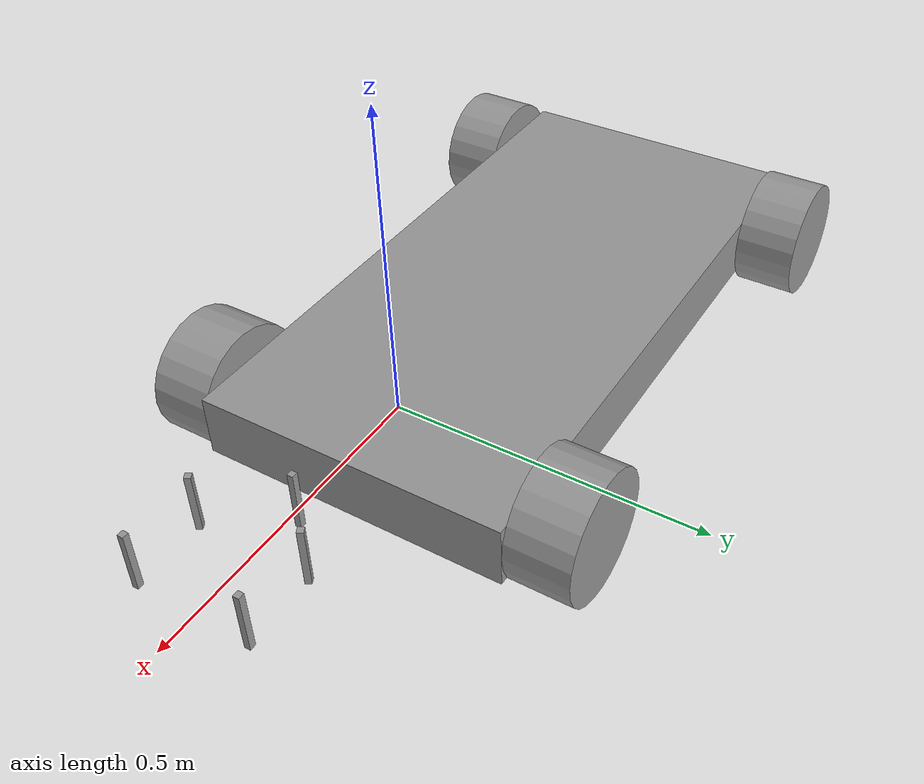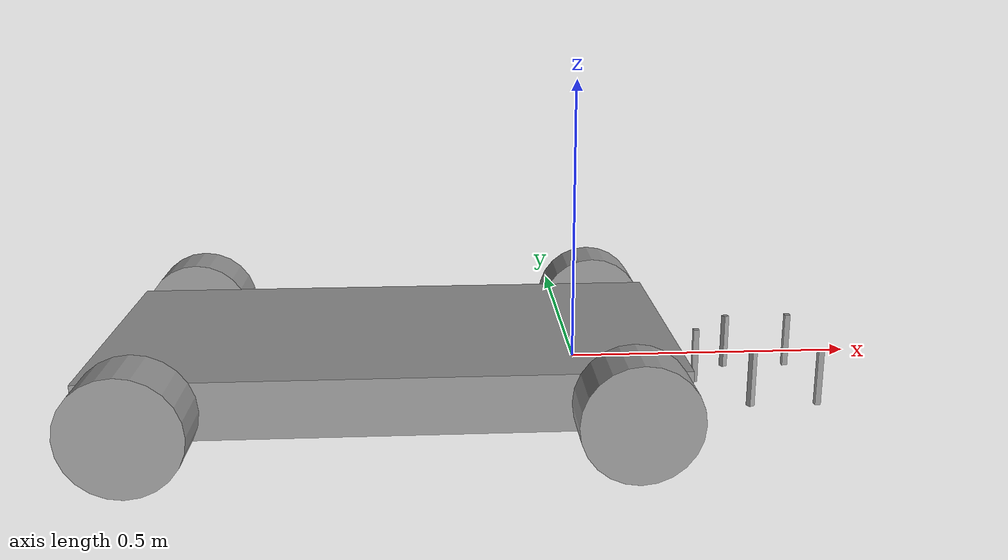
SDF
<?xml version='1.0'?>
<sdf version='1.6'>
  <model name='4wheelWithGripper'>
    <model name='4_wheel_with_gripper'>
      <link name='link_0'>
        <pose frame=''>-0.32743 0.03164 0 0 -0 0</pose>
        <inertial>
          <mass>1</mass>
          <inertia>
            <ixx>0.166667</ixx>
            <ixy>0</ixy>
            <ixz>0</ixz>
            <iyy>0.166667</iyy>
            <iyz>0</iyz>
            <izz>0.166667</izz>
          </inertia>
          <pose frame=''>0 0 0 0 -0 0</pose>
        </inertial>
        <gravity>1</gravity>
        <self_collide>0</self_collide>
        <kinematic>0</kinematic>
        <visual name='visual'>
          <pose frame=''>0 0 0 0 -0 0</pose>
          <geometry>
            <box>
              <size>1 0.5 0.1</size>
            </box>
          </geometry>
          <material>
            <lighting>1</lighting>
            <script>
              <uri>file://media/materials/scripts/gazebo.material</uri>
              <name>Gazebo/Grey</name>
            </script>
            <shader type='pixel'>
              <normal_map>__default__</normal_map>
            </shader>
            <ambient>0.3 0.3 0.3 1</ambient>
            <diffuse>0.7 0.7 0.7 1</diffuse>
            <specular>0.01 0.01 0.01 1</specular>
            <emissive>0 0 0 1</emissive>
          </material>
          <transparency>0</transparency>
          <cast_shadows>1</cast_shadows>
        </visual>
        <collision name='collision'>
          <laser_retro>0</laser_retro>
          <max_contacts>10</max_contacts>
          <pose frame=''>0 0 0 0 -0 0</pose>
          <geometry>
            <box>
              <size>1 0.5 0.1</size>
            </box>
          </geometry>
          <surface>
            <friction>
              <ode>
                <mu>1</mu>
                <mu2>1</mu2>
                <fdir1>0 0 0</fdir1>
                <slip1>0</slip1>
                <slip2>0</slip2>
              </ode>
              <torsional>
                <coefficient>1</coefficient>
                <patch_radius>0</patch_radius>
                <surface_radius>0</surface_radius>
                <use_patch_radius>1</use_patch_radius>
                <ode>
                  <slip>0</slip>
                </ode>
              </torsional>
            </friction>
            <bounce>
              <restitution_coefficient>0</restitution_coefficient>
              <threshold>1e+06</threshold>
            </bounce>
            <contact>
              <collide_without_contact>0</collide_without_contact>
              <collide_without_contact_bitmask>1</collide_without_contact_bitmask>
              <collide_bitmask>1</collide_bitmask>
              <ode>
                <soft_cfm>0</soft_cfm>
                <soft_erp>0.2</soft_erp>
                <kp>1e+13</kp>
                <kd>1</kd>
                <max_vel>0.01</max_vel>
                <min_depth>0</min_depth>
              </ode>
              <bullet>
                <split_impulse>1</split_impulse>
                <split_impulse_penetration_threshold>-0.01</split_impulse_penetration_threshold>
                <soft_cfm>0</soft_cfm>
                <soft_erp>0.2</soft_erp>
                <kp>1e+13</kp>
                <kd>1</kd>
              </bullet>
            </contact>
          </surface>
        </collision>
      </link>
      <link name='link_2'>
        <pose frame=''>-0.72743 -0.268373 0 1.5707 -0 0</pose>
        <inertial>
          <mass>1</mass>
          <inertia>
            <ixx>0.145833</ixx>
            <ixy>0</ixy>
            <ixz>0</ixz>
            <iyy>0.145833</iyy>
            <iyz>0</iyz>
            <izz>0.125</izz>
          </inertia>
          <pose frame=''>0 0 0 0 -0 0</pose>
        </inertial>
        <gravity>1</gravity>
        <self_collide>0</self_collide>
        <kinematic>0</kinematic>
        <visual name='visual'>
          <pose frame=''>0 0 0 0 -0 0</pose>
          <geometry>
            <cylinder>
              <radius>0.1</radius>
              <length>0.1</length>
            </cylinder>
          </geometry>
          <material>
            <lighting>1</lighting>
            <script>
              <uri>file://media/materials/scripts/gazebo.material</uri>
              <name>Gazebo/Grey</name>
            </script>
            <shader type='pixel'>
              <normal_map>__default__</normal_map>
            </shader>
            <ambient>0.3 0.3 0.3 1</ambient>
            <diffuse>0.7 0.7 0.7 1</diffuse>
            <specular>0.01 0.01 0.01 1</specular>
            <emissive>0 0 0 1</emissive>
          </material>
          <transparency>0</transparency>
          <cast_shadows>1</cast_shadows>
        </visual>
        <collision name='collision'>
          <laser_retro>0</laser_retro>
          <max_contacts>10</max_contacts>
          <pose frame=''>0 0 0 0 -0 0</pose>
          <geometry>
            <cylinder>
              <radius>0.1</radius>
              <length>0.1</length>
            </cylinder>
          </geometry>
          <surface>
            <friction>
              <ode>
                <mu>1</mu>
                <mu2>1</mu2>
                <fdir1>0 0 0</fdir1>
                <slip1>0</slip1>
                <slip2>0</slip2>
              </ode>
              <torsional>
                <coefficient>1</coefficient>
                <patch_radius>0</patch_radius>
                <surface_radius>0</surface_radius>
                <use_patch_radius>1</use_patch_radius>
                <ode>
                  <slip>0</slip>
                </ode>
              </torsional>
            </friction>
            <bounce>
              <restitution_coefficient>0</restitution_coefficient>
              <threshold>1e+06</threshold>
            </bounce>
            <contact>
              <collide_without_contact>0</collide_without_contact>
              <collide_without_contact_bitmask>1</collide_without_contact_bitmask>
              <collide_bitmask>1</collide_bitmask>
              <ode>
                <soft_cfm>0</soft_cfm>
                <soft_erp>0.2</soft_erp>
                <kp>1e+13</kp>
                <kd>1</kd>
                <max_vel>0.01</max_vel>
                <min_depth>0</min_depth>
              </ode>
              <bullet>
                <split_impulse>1</split_impulse>
                <split_impulse_penetration_threshold>-0.01</split_impulse_penetration_threshold>
                <soft_cfm>0</soft_cfm>
                <soft_erp>0.2</soft_erp>
                <kp>1e+13</kp>
                <kd>1</kd>
              </bullet>
            </contact>
          </surface>
        </collision>
      </link>
      <link name='link_2_clone'>
        <pose frame=''>0.07257 0.33165 0 1.5707 -0 0</pose>
        <inertial>
          <mass>1</mass>
          <inertia>
            <ixx>0.145833</ixx>
            <ixy>0</ixy>
            <ixz>0</ixz>
            <iyy>0.145833</iyy>
            <iyz>0</iyz>
            <izz>0.125</izz>
          </inertia>
          <pose frame=''>0 0 0 0 -0 0</pose>
        </inertial>
        <self_collide>0</self_collide>
        <kinematic>0</kinematic>
        <visual name='visual'>
          <pose frame=''>0 0 0 0 -0 0</pose>
          <geometry>
            <cylinder>
              <radius>0.1</radius>
              <length>0.1</length>
            </cylinder>
          </geometry>
          <material>
            <lighting>1</lighting>
            <script>
              <uri>file://media/materials/scripts/gazebo.material</uri>
              <name>Gazebo/Grey</name>
            </script>
            <shader type='pixel'>
              <normal_map>__default__</normal_map>
            </shader>
            <ambient>0.3 0.3 0.3 1</ambient>
            <diffuse>0.7 0.7 0.7 1</diffuse>
            <specular>0.01 0.01 0.01 1</specular>
            <emissive>0 0 0 1</emissive>
          </material>
          <transparency>0</transparency>
          <cast_shadows>1</cast_shadows>
        </visual>
        <collision name='collision'>
          <laser_retro>0</laser_retro>
          <max_contacts>10</max_contacts>
          <pose frame=''>0 0 0 0 -0 0</pose>
          <geometry>
            <cylinder>
              <radius>0.1</radius>
              <length>0.1</length>
            </cylinder>
          </geometry>
          <surface>
            <friction>
              <ode>
                <mu>1</mu>
                <mu2>1</mu2>
                <fdir1>0 0 0</fdir1>
                <slip1>0</slip1>
                <slip2>0</slip2>
              </ode>
              <torsional>
                <coefficient>1</coefficient>
                <patch_radius>0</patch_radius>
                <surface_radius>0</surface_radius>
                <use_patch_radius>1</use_patch_radius>
                <ode>
                  <slip>0</slip>
                </ode>
              </torsional>
            </friction>
            <bounce>
              <restitution_coefficient>0</restitution_coefficient>
              <threshold>1e+06</threshold>
            </bounce>
            <contact>
              <collide_without_contact>0</collide_without_contact>
              <collide_without_contact_bitmask>1</collide_without_contact_bitmask>
              <collide_bitmask>1</collide_bitmask>
              <ode>
                <soft_cfm>0</soft_cfm>
                <soft_erp>0.2</soft_erp>
                <kp>1e+13</kp>
                <kd>1</kd>
                <max_vel>0.01</max_vel>
                <min_depth>0</min_depth>
              </ode>
              <bullet>
                <split_impulse>1</split_impulse>
                <split_impulse_penetration_threshold>-0.01</split_impulse_penetration_threshold>
                <soft_cfm>0</soft_cfm>
                <soft_erp>0.2</soft_erp>
                <kp>1e+13</kp>
                <kd>1</kd>
              </bullet>
            </contact>
          </surface>
        </collision>
      </link>
      <link name='link_2_clone_0'>
        <pose frame=''>-0.72743 0.33165 0 1.5707 -0 0</pose>
        <inertial>
          <mass>1</mass>
          <inertia>
            <ixx>0.145833</ixx>
            <ixy>0</ixy>
            <ixz>0</ixz>
            <iyy>0.145833</iyy>
            <iyz>0</iyz>
            <izz>0.125</izz>
          </inertia>
          <pose frame=''>0 0 0 0 -0 0</pose>
        </inertial>
        <self_collide>0</self_collide>
        <kinematic>0</kinematic>
        <visual name='visual'>
          <pose frame=''>0 0 0 0 -0 0</pose>
          <geometry>
            <cylinder>
              <radius>0.1</radius>
              <length>0.1</length>
            </cylinder>
          </geometry>
          <material>
            <lighting>1</lighting>
            <script>
              <uri>file://media/materials/scripts/gazebo.material</uri>
              <name>Gazebo/Grey</name>
            </script>
            <shader type='pixel'>
              <normal_map>__default__</normal_map>
            </shader>
            <ambient>0.3 0.3 0.3 1</ambient>
            <diffuse>0.7 0.7 0.7 1</diffuse>
            <specular>0.01 0.01 0.01 1</specular>
            <emissive>0 0 0 1</emissive>
          </material>
          <transparency>0</transparency>
          <cast_shadows>1</cast_shadows>
        </visual>
        <collision name='collision'>
          <laser_retro>0</laser_retro>
          <max_contacts>10</max_contacts>
          <pose frame=''>0 0 0 0 -0 0</pose>
          <geometry>
            <cylinder>
              <radius>0.1</radius>
              <length>0.1</length>
            </cylinder>
          </geometry>
          <surface>
            <friction>
              <ode>
                <mu>1</mu>
                <mu2>1</mu2>
                <fdir1>0 0 0</fdir1>
                <slip1>0</slip1>
                <slip2>0</slip2>
              </ode>
              <torsional>
                <coefficient>1</coefficient>
                <patch_radius>0</patch_radius>
                <surface_radius>0</surface_radius>
                <use_patch_radius>1</use_patch_radius>
                <ode>
                  <slip>0</slip>
                </ode>
              </torsional>
            </friction>
            <bounce>
              <restitution_coefficient>0</restitution_coefficient>
              <threshold>1e+06</threshold>
            </bounce>
            <contact>
              <collide_without_contact>0</collide_without_contact>
              <collide_without_contact_bitmask>1</collide_without_contact_bitmask>
              <collide_bitmask>1</collide_bitmask>
              <ode>
                <soft_cfm>0</soft_cfm>
                <soft_erp>0.2</soft_erp>
                <kp>1e+13</kp>
                <kd>1</kd>
                <max_vel>0.01</max_vel>
                <min_depth>0</min_depth>
              </ode>
              <bullet>
                <split_impulse>1</split_impulse>
                <split_impulse_penetration_threshold>-0.01</split_impulse_penetration_threshold>
                <soft_cfm>0</soft_cfm>
                <soft_erp>0.2</soft_erp>
                <kp>1e+13</kp>
                <kd>1</kd>
              </bullet>
            </contact>
          </surface>
        </collision>
      </link>
      <link name='link_2_clone_1'>
        <pose frame=''>0.07257 -0.268369 0 1.5707 -0 0</pose>
        <inertial>
          <mass>1</mass>
          <inertia>
            <ixx>0.145833</ixx>
            <ixy>0</ixy>
            <ixz>0</ixz>
            <iyy>0.145833</iyy>
            <iyz>0</iyz>
            <izz>0.125</izz>
          </inertia>
          <pose frame=''>0 0 0 0 -0 0</pose>
        </inertial>
        <self_collide>0</self_collide>
        <kinematic>0</kinematic>
        <visual name='visual'>
          <pose frame=''>0 0 0 0 -0 0</pose>
          <geometry>
            <cylinder>
              <radius>0.1</radius>
              <length>0.1</length>
            </cylinder>
          </geometry>
          <material>
            <lighting>1</lighting>
            <script>
              <uri>file://media/materials/scripts/gazebo.material</uri>
              <name>Gazebo/Grey</name>
            </script>
            <shader type='pixel'>
              <normal_map>__default__</normal_map>
            </shader>
            <ambient>0.3 0.3 0.3 1</ambient>
            <diffuse>0.7 0.7 0.7 1</diffuse>
            <specular>0.01 0.01 0.01 1</specular>
            <emissive>0 0 0 1</emissive>
          </material>
          <transparency>0</transparency>
          <cast_shadows>1</cast_shadows>
        </visual>
        <collision name='collision'>
          <laser_retro>0</laser_retro>
          <max_contacts>10</max_contacts>
          <pose frame=''>0 0 0 0 -0 0</pose>
          <geometry>
            <cylinder>
              <radius>0.1</radius>
              <length>0.1</length>
            </cylinder>
          </geometry>
          <surface>
            <friction>
              <ode>
                <mu>1</mu>
                <mu2>1</mu2>
                <fdir1>0 0 0</fdir1>
                <slip1>0</slip1>
                <slip2>0</slip2>
              </ode>
              <torsional>
                <coefficient>1</coefficient>
                <patch_radius>0</patch_radius>
                <surface_radius>0</surface_radius>
                <use_patch_radius>1</use_patch_radius>
                <ode>
                  <slip>0</slip>
                </ode>
              </torsional>
            </friction>
            <bounce>
              <restitution_coefficient>0</restitution_coefficient>
              <threshold>1e+06</threshold>
            </bounce>
            <contact>
              <collide_without_contact>0</collide_without_contact>
              <collide_without_contact_bitmask>1</collide_without_contact_bitmask>
              <collide_bitmask>1</collide_bitmask>
              <ode>
                <soft_cfm>0</soft_cfm>
                <soft_erp>0.2</soft_erp>
                <kp>1e+13</kp>
                <kd>1</kd>
                <max_vel>0.01</max_vel>
                <min_depth>0</min_depth>
              </ode>
              <bullet>
                <split_impulse>1</split_impulse>
                <split_impulse_penetration_threshold>-0.01</split_impulse_penetration_threshold>
                <soft_cfm>0</soft_cfm>
                <soft_erp>0.2</soft_erp>
                <kp>1e+13</kp>
                <kd>1</kd>
              </bullet>
            </contact>
          </surface>
        </collision>
      </link>
      <link name='link_3'>
        <pose frame=''>0.22257 -0.01336 0 0 -0 0</pose>
        <inertial>
          <mass>1</mass>
          <inertia>
            <ixx>0.166667</ixx>
            <ixy>0</ixy>
            <ixz>0</ixz>
            <iyy>0.166667</iyy>
            <iyz>0</iyz>
            <izz>0.166667</izz>
          </inertia>
          <pose frame=''>0 0 0 0 -0 0</pose>
        </inertial>
        <gravity>1</gravity>
        <self_collide>0</self_collide>
        <kinematic>0</kinematic>
        <visual name='visual'>
          <pose frame=''>0 0 0 0 -0 0</pose>
          <geometry>
            <box>
              <size>0.01 0.01 0.1</size>
            </box>
          </geometry>
          <material>
            <lighting>1</lighting>
            <script>
              <uri>file://media/materials/scripts/gazebo.material</uri>
              <name>Gazebo/Grey</name>
            </script>
            <shader type='pixel'>
              <normal_map>__default__</normal_map>
            </shader>
            <ambient>0.3 0.3 0.3 1</ambient>
            <diffuse>0.7 0.7 0.7 1</diffuse>
            <specular>0.01 0.01 0.01 1</specular>
            <emissive>0 0 0 1</emissive>
          </material>
          <transparency>0</transparency>
          <cast_shadows>1</cast_shadows>
        </visual>
        <collision name='collision'>
          <laser_retro>0</laser_retro>
          <max_contacts>10</max_contacts>
          <pose frame=''>0 0 0 0 -0 0</pose>
          <geometry>
            <box>
              <size>0.1 0.1 0.1</size>
            </box>
          </geometry>
          <surface>
            <friction>
              <ode>
                <mu>1</mu>
                <mu2>1</mu2>
                <fdir1>0 0 0</fdir1>
                <slip1>0</slip1>
                <slip2>0</slip2>
              </ode>
              <torsional>
                <coefficient>1</coefficient>
                <patch_radius>0</patch_radius>
                <surface_radius>0</surface_radius>
                <use_patch_radius>1</use_patch_radius>
                <ode>
                  <slip>0</slip>
                </ode>
              </torsional>
            </friction>
            <bounce>
              <restitution_coefficient>0</restitution_coefficient>
              <threshold>1e+06</threshold>
            </bounce>
            <contact>
              <collide_without_contact>0</collide_without_contact>
              <collide_without_contact_bitmask>1</collide_without_contact_bitmask>
              <collide_bitmask>1</collide_bitmask>
              <ode>
                <soft_cfm>0</soft_cfm>
                <soft_erp>0.2</soft_erp>
                <kp>1e+13</kp>
                <kd>1</kd>
                <max_vel>0.01</max_vel>
                <min_depth>0</min_depth>
              </ode>
              <bullet>
                <split_impulse>1</split_impulse>
                <split_impulse_penetration_threshold>-0.01</split_impulse_penetration_threshold>
                <soft_cfm>0</soft_cfm>
                <soft_erp>0.2</soft_erp>
                <kp>1e+13</kp>
                <kd>1</kd>
              </bullet>
            </contact>
          </surface>
        </collision>
      </link>
      <link name='link_3_clone'>
        <pose frame=''>0.29472 0.05879 0 0 -0 0.5</pose>
        <inertial>
          <mass>1</mass>
          <inertia>
            <ixx>0.166667</ixx>
            <ixy>0</ixy>
            <ixz>0</ixz>
            <iyy>0.166667</iyy>
            <iyz>0</iyz>
            <izz>0.166667</izz>
          </inertia>
          <pose frame=''>0 0 0 0 -0 0</pose>
        </inertial>
        <self_collide>0</self_collide>
        <kinematic>0</kinematic>
        <gravity>1</gravity>
        <visual name='visual'>
          <pose frame=''>0 0 0 0 -0 0</pose>
          <geometry>
            <box>
              <size>0.01 0.01 0.1</size>
            </box>
          </geometry>
          <material>
            <lighting>1</lighting>
            <script>
              <uri>file://media/materials/scripts/gazebo.material</uri>
              <name>Gazebo/Grey</name>
            </script>
            <shader type='pixel'>
              <normal_map>__default__</normal_map>
            </shader>
            <ambient>0.3 0.3 0.3 1</ambient>
            <diffuse>0.7 0.7 0.7 1</diffuse>
            <specular>0.01 0.01 0.01 1</specular>
            <emissive>0 0 0 1</emissive>
          </material>
          <transparency>0</transparency>
          <cast_shadows>1</cast_shadows>
        </visual>
        <collision name='collision'>
          <laser_retro>0</laser_retro>
          <max_contacts>10</max_contacts>
          <pose frame=''>0 0 0 0 -0 0</pose>
          <geometry>
            <box>
              <size>0.1 0.1 0.1</size>
            </box>
          </geometry>
          <surface>
            <friction>
              <ode>
                <mu>1</mu>
                <mu2>1</mu2>
                <fdir1>0 0 0</fdir1>
                <slip1>0</slip1>
                <slip2>0</slip2>
              </ode>
              <torsional>
                <coefficient>1</coefficient>
                <patch_radius>0</patch_radius>
                <surface_radius>0</surface_radius>
                <use_patch_radius>1</use_patch_radius>
                <ode>
                  <slip>0</slip>
                </ode>
              </torsional>
            </friction>
            <bounce>
              <restitution_coefficient>0</restitution_coefficient>
              <threshold>1e+06</threshold>
            </bounce>
            <contact>
              <collide_without_contact>0</collide_without_contact>
              <collide_without_contact_bitmask>1</collide_without_contact_bitmask>
              <collide_bitmask>1</collide_bitmask>
              <ode>
                <soft_cfm>0</soft_cfm>
                <soft_erp>0.2</soft_erp>
                <kp>1e+13</kp>
                <kd>1</kd>
                <max_vel>0.01</max_vel>
                <min_depth>0</min_depth>
              </ode>
              <bullet>
                <split_impulse>1</split_impulse>
                <split_impulse_penetration_threshold>-0.01</split_impulse_penetration_threshold>
                <soft_cfm>0</soft_cfm>
                <soft_erp>0.2</soft_erp>
                <kp>1e+13</kp>
                <kd>1</kd>
              </bullet>
            </contact>
          </surface>
        </collision>
      </link>
      <link name='link_3_clone_1'>
        <pose frame=''>0.41257 -0.13121 0 0 -0 0</pose>
        <inertial>
          <mass>1</mass>
          <inertia>
            <ixx>0.166667</ixx>
            <ixy>0</ixy>
            <ixz>0</ixz>
            <iyy>0.166667</iyy>
            <iyz>0</iyz>
            <izz>0.166667</izz>
          </inertia>
          <pose frame=''>0 0 0 0 -0 0</pose>
        </inertial>
        <self_collide>0</self_collide>
        <kinematic>0</kinematic>
        <gravity>1</gravity>
        <visual name='visual'>
          <pose frame=''>0 0 0 0 -0 0</pose>
          <geometry>
            <box>
              <size>0.01 0.01 0.1</size>
            </box>
          </geometry>
          <material>
            <lighting>1</lighting>
            <script>
              <uri>file://media/materials/scripts/gazebo.material</uri>
              <name>Gazebo/Grey</name>
            </script>
            <shader type='pixel'>
              <normal_map>__default__</normal_map>
            </shader>
            <ambient>0.3 0.3 0.3 1</ambient>
            <diffuse>0.7 0.7 0.7 1</diffuse>
            <specular>0.01 0.01 0.01 1</specular>
            <emissive>0 0 0 1</emissive>
          </material>
          <transparency>0</transparency>
          <cast_shadows>1</cast_shadows>
        </visual>
        <collision name='collision'>
          <laser_retro>0</laser_retro>
          <max_contacts>10</max_contacts>
          <pose frame=''>0 0 0 0 -0 0</pose>
          <geometry>
            <box>
              <size>0.1 0.1 0.1</size>
            </box>
          </geometry>
          <surface>
            <friction>
              <ode>
                <mu>1</mu>
                <mu2>1</mu2>
                <fdir1>0 0 0</fdir1>
                <slip1>0</slip1>
                <slip2>0</slip2>
              </ode>
              <torsional>
                <coefficient>1</coefficient>
                <patch_radius>0</patch_radius>
                <surface_radius>0</surface_radius>
                <use_patch_radius>1</use_patch_radius>
                <ode>
                  <slip>0</slip>
                </ode>
              </torsional>
            </friction>
            <bounce>
              <restitution_coefficient>0</restitution_coefficient>
              <threshold>1e+06</threshold>
            </bounce>
            <contact>
              <collide_without_contact>0</collide_without_contact>
              <collide_without_contact_bitmask>1</collide_without_contact_bitmask>
              <collide_bitmask>1</collide_bitmask>
              <ode>
                <soft_cfm>0</soft_cfm>
                <soft_erp>0.2</soft_erp>
                <kp>1e+13</kp>
                <kd>1</kd>
                <max_vel>0.01</max_vel>
                <min_depth>0</min_depth>
              </ode>
              <bullet>
                <split_impulse>1</split_impulse>
                <split_impulse_penetration_threshold>-0.01</split_impulse_penetration_threshold>
                <soft_cfm>0</soft_cfm>
                <soft_erp>0.2</soft_erp>
                <kp>1e+13</kp>
                <kd>1</kd>
              </bullet>
            </contact>
          </surface>
        </collision>
      </link>
      <link name='link_3_clone_1_clone'>
        <pose frame=''>0.41257 0.05879 0 0 -0 0</pose>
        <inertial>
          <mass>1</mass>
          <inertia>
            <ixx>0.166667</ixx>
            <ixy>0</ixy>
            <ixz>0</ixz>
            <iyy>0.166667</iyy>
            <iyz>0</iyz>
            <izz>0.166667</izz>
          </inertia>
          <pose frame=''>0 0 0 0 -0 0</pose>
        </inertial>
        <self_collide>0</self_collide>
        <kinematic>0</kinematic>
        <visual name='visual'>
          <pose frame=''>0 0 0 0 -0 0</pose>
          <geometry>
            <box>
              <size>0.01 0.01 0.1</size>
            </box>
          </geometry>
          <material>
            <lighting>1</lighting>
            <script>
              <uri>file://media/materials/scripts/gazebo.material</uri>
              <name>Gazebo/Grey</name>
            </script>
            <shader type='pixel'>
              <normal_map>__default__</normal_map>
            </shader>
            <ambient>0.3 0.3 0.3 1</ambient>
            <diffuse>0.7 0.7 0.7 1</diffuse>
            <specular>0.01 0.01 0.01 1</specular>
            <emissive>0 0 0 1</emissive>
          </material>
          <transparency>0</transparency>
          <cast_shadows>1</cast_shadows>
        </visual>
        <collision name='collision'>
          <laser_retro>0</laser_retro>
          <max_contacts>10</max_contacts>
          <pose frame=''>0 0 0 0 -0 0</pose>
          <geometry>
            <box>
              <size>0.1 0.1 0.1</size>
            </box>
          </geometry>
          <surface>
            <friction>
              <ode>
                <mu>1</mu>
                <mu2>1</mu2>
                <fdir1>0 0 0</fdir1>
                <slip1>0</slip1>
                <slip2>0</slip2>
              </ode>
              <torsional>
                <coefficient>1</coefficient>
                <patch_radius>0</patch_radius>
                <surface_radius>0</surface_radius>
                <use_patch_radius>1</use_patch_radius>
                <ode>
                  <slip>0</slip>
                </ode>
              </torsional>
            </friction>
            <bounce>
              <restitution_coefficient>0</restitution_coefficient>
              <threshold>1e+06</threshold>
            </bounce>
            <contact>
              <collide_without_contact>0</collide_without_contact>
              <collide_without_contact_bitmask>1</collide_without_contact_bitmask>
              <collide_bitmask>1</collide_bitmask>
              <ode>
                <soft_cfm>0</soft_cfm>
                <soft_erp>0.2</soft_erp>
                <kp>1e+13</kp>
                <kd>1</kd>
                <max_vel>0.01</max_vel>
                <min_depth>0</min_depth>
              </ode>
              <bullet>
                <split_impulse>1</split_impulse>
                <split_impulse_penetration_threshold>-0.01</split_impulse_penetration_threshold>
                <soft_cfm>0</soft_cfm>
                <soft_erp>0.2</soft_erp>
                <kp>1e+13</kp>
                <kd>1</kd>
              </bullet>
            </contact>
          </surface>
        </collision>
      </link>
      <link name='link_3_clone_clone'>
        <pose frame=''>0.29472 -0.13121 0 0 -0 0.5</pose>
        <inertial>
          <mass>1</mass>
          <inertia>
            <ixx>0.166667</ixx>
            <ixy>0</ixy>
            <ixz>0</ixz>
            <iyy>0.166667</iyy>
            <iyz>0</iyz>
            <izz>0.166667</izz>
          </inertia>
          <pose frame=''>0 0 0 0 -0 0</pose>
        </inertial>
        <self_collide>0</self_collide>
        <kinematic>0</kinematic>
        <visual name='visual'>
          <pose frame=''>0 0 0 0 -0 0</pose>
          <geometry>
            <box>
              <size>0.01 0.01 0.1</size>
            </box>
          </geometry>
          <material>
            <lighting>1</lighting>
            <script>
              <uri>file://media/materials/scripts/gazebo.material</uri>
              <name>Gazebo/Grey</name>
            </script>
            <shader type='pixel'>
              <normal_map>__default__</normal_map>
            </shader>
            <ambient>0.3 0.3 0.3 1</ambient>
            <diffuse>0.7 0.7 0.7 1</diffuse>
            <specular>0.01 0.01 0.01 1</specular>
            <emissive>0 0 0 1</emissive>
          </material>
          <transparency>0</transparency>
          <cast_shadows>1</cast_shadows>
        </visual>
        <collision name='collision'>
          <laser_retro>0</laser_retro>
          <max_contacts>10</max_contacts>
          <pose frame=''>0 0 0 0 -0 0</pose>
          <geometry>
            <box>
              <size>0.1 0.1 0.1</size>
            </box>
          </geometry>
          <surface>
            <friction>
              <ode>
                <mu>1</mu>
                <mu2>1</mu2>
                <fdir1>0 0 0</fdir1>
                <slip1>0</slip1>
                <slip2>0</slip2>
              </ode>
              <torsional>
                <coefficient>1</coefficient>
                <patch_radius>0</patch_radius>
                <surface_radius>0</surface_radius>
                <use_patch_radius>1</use_patch_radius>
                <ode>
                  <slip>0</slip>
                </ode>
              </torsional>
            </friction>
            <bounce>
              <restitution_coefficient>0</restitution_coefficient>
              <threshold>1e+06</threshold>
            </bounce>
            <contact>
              <collide_without_contact>0</collide_without_contact>
              <collide_without_contact_bitmask>1</collide_without_contact_bitmask>
              <collide_bitmask>1</collide_bitmask>
              <ode>
                <soft_cfm>0</soft_cfm>
                <soft_erp>0.2</soft_erp>
                <kp>1e+13</kp>
                <kd>1</kd>
                <max_vel>0.01</max_vel>
                <min_depth>0</min_depth>
              </ode>
              <bullet>
                <split_impulse>1</split_impulse>
                <split_impulse_penetration_threshold>-0.01</split_impulse_penetration_threshold>
                <soft_cfm>0</soft_cfm>
                <soft_erp>0.2</soft_erp>
                <kp>1e+13</kp>
                <kd>1</kd>
              </bullet>
            </contact>
          </surface>
        </collision>
      </link>
      <joint name='link_0_JOINT_0' type='revolute'>
        <parent>link_0</parent>
        <child>link_2</child>
        <pose frame=''>0 0 0 0 -0 0</pose>
        <axis>
          <xyz>1 0 0</xyz>
          <use_parent_model_frame>0</use_parent_model_frame>
          <limit>
            <lower>-1.79769e+308</lower>
            <upper>1.79769e+308</upper>
            <effort>-1</effort>
            <velocity>-1</velocity>
          </limit>
          <dynamics>
            <spring_reference>0</spring_reference>
            <spring_stiffness>0</spring_stiffness>
            <damping>0</damping>
          </dynamics>
        </axis>
        <physics>
          <ode>
            <limit>
              <cfm>0</cfm>
              <erp>0.2</erp>
            </limit>
            <suspension>
              <cfm>0</cfm>
              <erp>0.2</erp>
            </suspension>
          </ode>
        </physics>
      </joint>
      <joint name='link_0_JOINT_2' type='revolute'>
        <parent>link_0</parent>
        <child>link_2_clone_0</child>
        <pose frame=''>0 0 0 0 -0 0</pose>
        <axis>
          <xyz>0 0 1</xyz>
          <use_parent_model_frame>0</use_parent_model_frame>
          <limit>
            <lower>-1.79769e+308</lower>
            <upper>1.79769e+308</upper>
            <effort>-1</effort>
            <velocity>-1</velocity>
          </limit>
          <dynamics>
            <spring_reference>0</spring_reference>
            <spring_stiffness>0</spring_stiffness>
            <damping>0</damping>
          </dynamics>
        </axis>
        <physics>
          <ode>
            <limit>
              <cfm>0</cfm>
              <erp>0.2</erp>
            </limit>
            <suspension>
              <cfm>0</cfm>
              <erp>0.2</erp>
            </suspension>
          </ode>
        </physics>
      </joint>
      <joint name='link_0_JOINT_3' type='revolute'>
        <parent>link_0</parent>
        <child>link_2_clone_1</child>
        <pose frame=''>0 0 0 0 -0 0</pose>
        <axis>
          <xyz>0 0 1</xyz>
          <use_parent_model_frame>0</use_parent_model_frame>
          <limit>
            <lower>-1.79769e+308</lower>
            <upper>1.79769e+308</upper>
            <effort>-1</effort>
            <velocity>-1</velocity>
          </limit>
          <dynamics>
            <spring_reference>0</spring_reference>
            <spring_stiffness>0</spring_stiffness>
            <damping>0</damping>
          </dynamics>
        </axis>
        <physics>
          <ode>
            <limit>
              <cfm>0</cfm>
              <erp>0.2</erp>
            </limit>
            <suspension>
              <cfm>0</cfm>
              <erp>0.2</erp>
            </suspension>
          </ode>
        </physics>
      </joint>
      <joint name='link_0_JOINT_4' type='revolute'>
        <parent>link_0</parent>
        <child>link_2_clone</child>
        <pose frame=''>0 0 0 0 -0 0</pose>
        <axis>
          <xyz>0 0 1</xyz>
          <use_parent_model_frame>0</use_parent_model_frame>
          <limit>
            <lower>-1.79769e+308</lower>
            <upper>1.79769e+308</upper>
            <effort>-1</effort>
            <velocity>-1</velocity>
          </limit>
          <dynamics>
            <spring_reference>0</spring_reference>
            <spring_stiffness>0</spring_stiffness>
            <damping>0</damping>
          </dynamics>
        </axis>
        <physics>
          <ode>
            <limit>
              <cfm>0</cfm>
              <erp>0.2</erp>
            </limit>
            <suspension>
              <cfm>0</cfm>
              <erp>0.2</erp>
            </suspension>
          </ode>
        </physics>
      </joint>
      <joint name='link_0_JOINT_5' type='revolute'>
        <parent>link_0</parent>
        <child>link_3</child>
        <pose frame=''>0 0 0 0 -0 0</pose>
        <axis>
          <xyz>0 0 1</xyz>
          <use_parent_model_frame>0</use_parent_model_frame>
          <limit>
            <lower>-1.79769e+308</lower>
            <upper>1.79769e+308</upper>
            <effort>-1</effort>
            <velocity>-1</velocity>
          </limit>
          <dynamics>
            <spring_reference>0</spring_reference>
            <spring_stiffness>0</spring_stiffness>
            <damping>0</damping>
          </dynamics>
        </axis>
        <physics>
          <ode>
            <limit>
              <cfm>0</cfm>
              <erp>0.2</erp>
            </limit>
            <suspension>
              <cfm>0</cfm>
              <erp>0.2</erp>
            </suspension>
          </ode>
        </physics>
      </joint>
      <joint name='link_3_JOINT_8' type='revolute'>
        <parent>link_3</parent>
        <child>link_3_clone_clone</child>
        <pose frame=''>0 0 0 0 -0 0</pose>
        <axis>
          <xyz>0 0 1</xyz>
          <use_parent_model_frame>0</use_parent_model_frame>
          <limit>
            <lower>-1.79769e+308</lower>
            <upper>1.79769e+308</upper>
            <effort>-1</effort>
            <velocity>-1</velocity>
          </limit>
          <dynamics>
            <spring_reference>0</spring_reference>
            <spring_stiffness>0</spring_stiffness>
            <damping>0</damping>
          </dynamics>
        </axis>
        <physics>
          <ode>
            <limit>
              <cfm>0</cfm>
              <erp>0.2</erp>
            </limit>
            <suspension>
              <cfm>0</cfm>
              <erp>0.2</erp>
            </suspension>
          </ode>
        </physics>
      </joint>
      <joint name='link_3_JOINT_9' type='revolute'>
        <parent>link_3</parent>
        <child>link_3_clone</child>
        <pose frame=''>0 0 0 0 -0 0</pose>
        <axis>
          <xyz>0 0 1</xyz>
          <use_parent_model_frame>0</use_parent_model_frame>
          <limit>
            <lower>-1.79769e+308</lower>
            <upper>1.79769e+308</upper>
            <effort>-1</effort>
            <velocity>-1</velocity>
          </limit>
          <dynamics>
            <spring_reference>0</spring_reference>
            <spring_stiffness>0</spring_stiffness>
            <damping>0</damping>
          </dynamics>
        </axis>
        <physics>
          <ode>
            <limit>
              <cfm>0</cfm>
              <erp>0.2</erp>
            </limit>
            <suspension>
              <cfm>0</cfm>
              <erp>0.2</erp>
            </suspension>
          </ode>
        </physics>
      </joint>
      <joint name='link_3_clone_JOINT_11' type='revolute'>
        <parent>link_3_clone</parent>
        <child>link_3_clone_1_clone</child>
        <pose frame=''>0 0 0 0 -0 0</pose>
        <axis>
          <xyz>1 0 0</xyz>
          <use_parent_model_frame>0</use_parent_model_frame>
          <limit>
            <lower>-1.79769e+308</lower>
            <upper>1.79769e+308</upper>
            <effort>-1</effort>
            <velocity>-1</velocity>
          </limit>
          <dynamics>
            <spring_reference>0</spring_reference>
            <spring_stiffness>0</spring_stiffness>
            <damping>0</damping>
          </dynamics>
        </axis>
        <physics>
          <ode>
            <limit>
              <cfm>0</cfm>
              <erp>0.2</erp>
            </limit>
            <suspension>
              <cfm>0</cfm>
              <erp>0.2</erp>
            </suspension>
          </ode>
        </physics>
      </joint>
      <joint name='link_3_clone_clone_JOINT_10' type='revolute'>
        <parent>link_3_clone_clone</parent>
        <child>link_3_clone_1</child>
        <pose frame=''>0 0 0 0 -0 0</pose>
        <axis>
          <xyz>1 0 0</xyz>
          <use_parent_model_frame>0</use_parent_model_frame>
          <limit>
            <lower>-1.79769e+308</lower>
            <upper>1.79769e+308</upper>
            <effort>-1</effort>
            <velocity>-1</velocity>
          </limit>
          <dynamics>
            <spring_reference>0</spring_reference>
            <spring_stiffness>0</spring_stiffness>
            <damping>0</damping>
          </dynamics>
        </axis>
        <physics>
          <ode>
            <limit>
              <cfm>0</cfm>
              <erp>0.2</erp>
            </limit>
            <suspension>
              <cfm>0</cfm>
              <erp>0.2</erp>
            </suspension>
          </ode>
        </physics>
      </joint>
      <static>0</static>
      <allow_auto_disable>1</allow_auto_disable>
      <pose frame=''>0 0 0 0 -0 0</pose>
    </model>
    <static>0</static>
    <allow_auto_disable>1</allow_auto_disable>
  </model>
</sdf>
